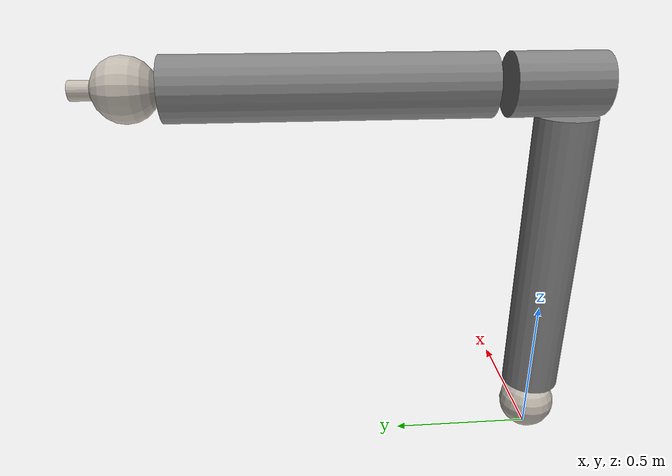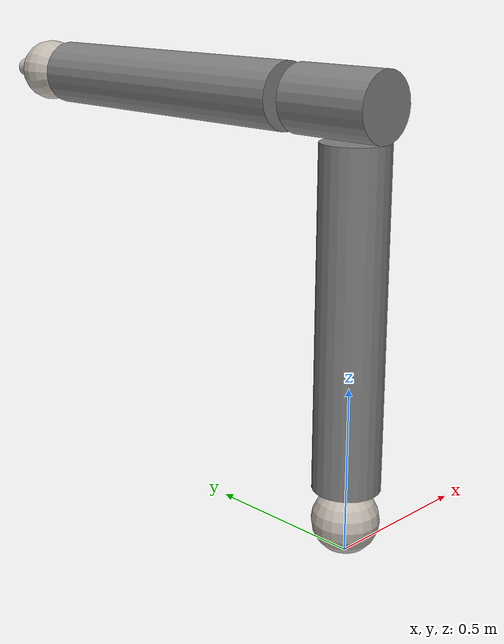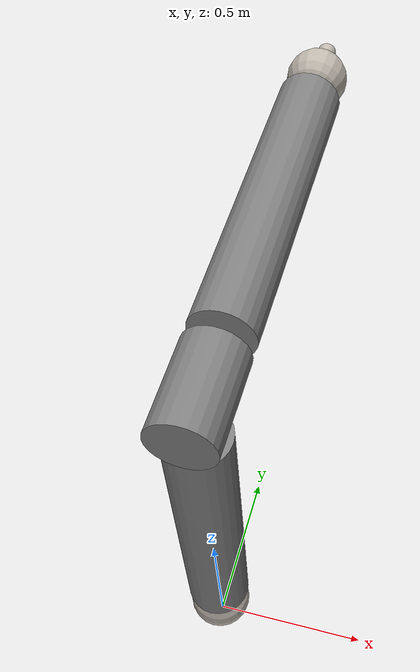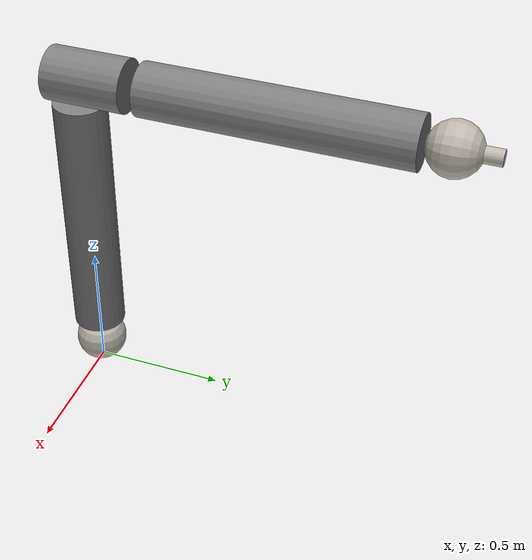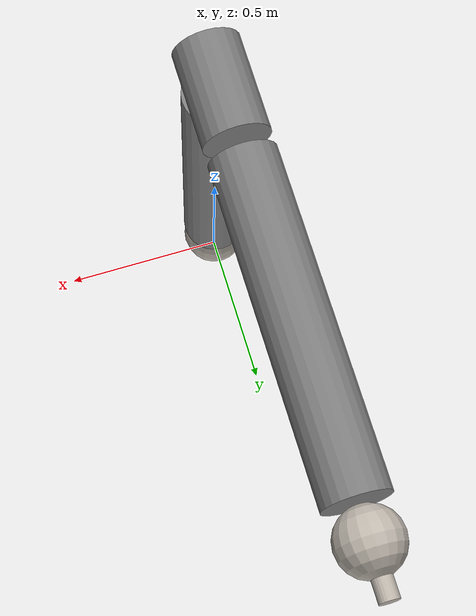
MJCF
<mujoco model="planar_2dof">
    <compiler angle="radian"/>

    <option gravity="0 0 0" integrator="implicitfast" timestep="0.01">
        <flag contact="enable"/>
    </option>

    <asset>
        <texture name="cube" type="cube"
                 fileup="../common_assets/reorientation_cube_textures/fileup.png"
                 fileback="../common_assets/reorientation_cube_textures/fileback.png"
                 filedown="../common_assets/reorientation_cube_textures/filedown.png"
                 filefront="../common_assets/reorientation_cube_textures/filefront.png"
                 fileleft="../common_assets/reorientation_cube_textures/fileleft.png"
                 fileright="../common_assets/reorientation_cube_textures/fileright.png"/>
        <material name="cube" texture="cube"/>
    </asset>

    <worldbody>
        <body name="link0">
            <geom name="link0" size="0.1" pos="0 0 0.1" type="sphere" material="cube"/>
            <body name="link1" pos="0 0 0.1">
                <inertial pos="0 0 0.5" mass="1" diaginertia="0.0858 0.0858 0.005"/>
                <joint name="joint1" pos="0 0 0" axis="1 0 0" range="-2.8973 2.8973" actuatorfrcrange="-87 87"/>
                <geom name="link1" size="0.1 0.5" pos="0 0 0.6" type="cylinder"/>
                <body name="link2" pos="0 0.0 1.2" quat="1 -1 0 0">
                    <inertial pos="0 0.0 0.2" mass="1" diaginertia="0.0858 0.0858 0.005"/>
                    <joint name="joint2" pos="0 0.0 0" axis="0 1 0" range="-2.8973 2.8973" actuatorfrcrange="-87 87"/>
                    <geom name="link2" size="0.1 0.15" pos="0 0 0.05" type="cylinder"/>
                    <body name="link3" pos="0 0 0.15">
                        <inertial pos="0 0 0.50007" mass="1.0001" diaginertia="0.0858997 0.0858997 0.00505"/>
                        <joint name="joint3" pos="0 0 0" axis="1 0 0" range="-1.7628 1.7628" actuatorfrcrange="-87 87"/>
                        <geom name="link3"  size="0.1 0.5" pos="0 0 0.6" type="cylinder"/>
                        <body name="hand" pos="0 0 1.2">
                            <inertial pos="0 0 0.005" mass="0.0001" diaginertia="0.00005 0.00005 0.00005"/>
                            <joint name="joint4" pos="0 0 0" axis="0 0 1" range="-1.7628 1.7628" actuatorfrcrange="-87 87"/>
                            <geom name="hand" size="0.1" pos="0 0 0.005" type="sphere" material="cube"/>
                            <site name="hand" pos="0 0 0.005" size="0.01"/>
                            <body name="finger" pos="0 0 0.1">
                                <inertial pos="0 0 0.005" mass="0.0001" diaginertia="0.00005 0.00005 0.00005"/>
                                <geom name="finger" size="0.03 0.05" pos="0 0 0.015" type="cylinder" material="cube"/>
                            </body>
                        </body>
                    </body>
                </body>
            </body>
        </body>
    </worldbody>

    <actuator>
        <velocity joint="joint1" ctrlrange="-2.0 2.0" ctrllimited="true" kv="500"/>
        <velocity joint="joint2" ctrlrange="-2.0 2.0" ctrllimited="true" kv="500"/>
        <velocity joint="joint3" ctrlrange="-2.0 2.0" ctrllimited="true" kv="500"/>
        <velocity joint="joint4" ctrlrange="-2.0 2.0" ctrllimited="true" kv="500"/>
    </actuator>

    <keyframe>
        <key name="home" qpos="0 0.5 0 0" ctrl="0 0 0 0"/>
    </keyframe>
</mujoco>
